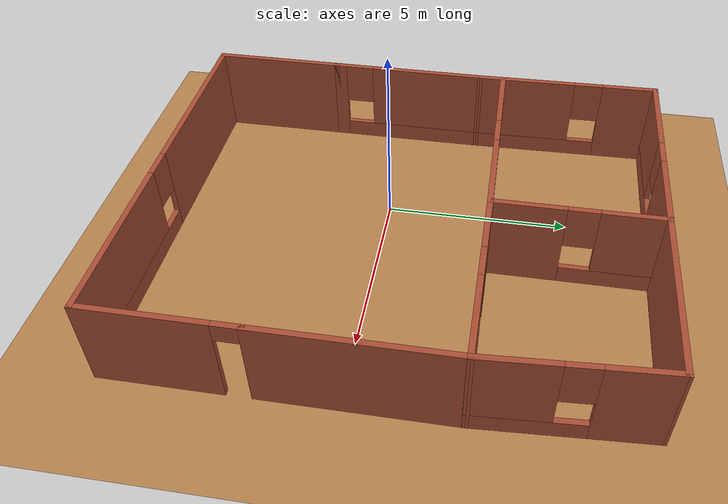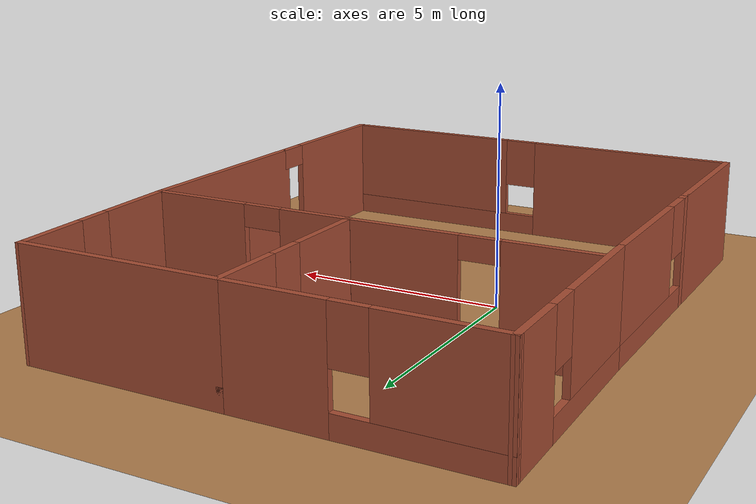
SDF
<sdf version="1.7">
 <world name="default">
  <light name="sun" type="directional">
   <pose>0 0 10 0 -0 0</pose>
   <diffuse>0.8 0.8 0.8 1</diffuse>
   <specular>0.2 0.2 0.2 1</specular>
   <attenuation>
    <range>1000</range>
    <constant>0.9</constant>
    <linear>0.01</linear>
    <quadratic>0.001</quadratic>
   </attenuation>
   <direction>-0.5 0.1 -0.9</direction>
   <spot><inner_angle>0</inner_angle><outer_angle>0</outer_angle><falloff>0</falloff></spot>
  </light>
  <model name="ground_plane">
   <static>1</static>
   <link name="link">
    <collision name="collision">
     <geometry><plane><normal>0 0 1</normal><size>100 100</size></plane></geometry>
     <surface>
      <contact><collide_bitmask>65535</collide_bitmask></contact>
      <friction><ode><mu>100</mu><mu2>50</mu2></ode></friction>
     </surface>
    </collision>
    <visual name="visual">
     <cast_shadows>0</cast_shadows>
     <geometry><plane><normal>0 0 1</normal><size>100 100</size></plane></geometry>
     <material>
      <script><uri>file://media/materials/scripts/gazebo.material</uri><name>Gazebo/Wood</name></script>
     </material>
    </visual>
   </link>
  </model>
  <gravity>0 0 -9.8</gravity>
  <magnetic_field>6e-06 2.3e-05 -4.2e-05</magnetic_field>
  <atmosphere type="adiabatic"/>
  <physics type="ode">
   <max_step_size>0.001</max_step_size>
   <real_time_factor>1</real_time_factor>
   <real_time_update_rate>1000</real_time_update_rate>
  </physics>
  <scene><ambient>0.4 0.4 0.4 1</ambient><background>0.7 0.7 0.7 1</background><shadows>1</shadows></scene>
  <spherical_coordinates>
   <surface_model>EARTH_WGS84</surface_model>
   <latitude_deg>0</latitude_deg>
   <longitude_deg>0</longitude_deg>
   <elevation>0</elevation>
   <heading_deg>0</heading_deg>
  </spherical_coordinates>
  <model name="Map4">
   <pose>1.65411 0.721478 0 0 -0 0</pose>
   <link name="Wall_0">
    <collision name="Wall_0_Collision">
     <geometry><box><size>3.75 0.15 2.5</size></box></geometry>
     <pose>0 0 1.25 0 -0 0</pose>
    </collision>
    <visual name="Wall_0_Visual">
     <pose>0 0 1.25 0 -0 0</pose>
     <geometry><box><size>3.75 0.15 2.5</size></box></geometry>
     <material>
      <script><uri>file://media/materials/scripts/gazebo.material</uri><name>Gazebo/Bricks</name></script>
      <ambient>1 1 1 1</ambient>
     </material>
     <meta><layer>0</layer></meta>
    </visual>
    <pose>-5.12636 -4.72709 0 0 -0 -1.5708</pose>
   </link>
   <link name="Wall_1">
    <pose>0.048638 -6.52709 0 0 -0 0</pose>
    <visual name="Wall_1_Visual_0">
     <pose>-2.71065 0 1.25 0 -0 0</pose>
     <geometry><box><size>5.07869 0.15 2.5</size></box></geometry>
     <material>
      <script><uri>file://media/materials/scripts/gazebo.material</uri><name>Gazebo/Bricks</name></script>
      <ambient>1 1 1 1</ambient>
     </material>
     <meta><layer>0</layer></meta>
    </visual>
    <collision name="Wall_1_Collision_0">
     <geometry><box><size>5.07869 0.15 2.5</size></box></geometry>
     <pose>-2.71065 0 1.25 0 -0 0</pose>
    </collision>
    <visual name="Wall_1_Visual_1">
     <pose>2.53935 0 0.25 0 -0 0</pose>
     <geometry><box><size>5.42131 0.15 0.5</size></box></geometry>
     <material>
      <script><uri>file://media/materials/scripts/gazebo.material</uri><name>Gazebo/Bricks</name></script>
      <ambient>1 1 1 1</ambient>
     </material>
     <meta><layer>0</layer></meta>
    </visual>
    <collision name="Wall_1_Collision_1">
     <geometry><box><size>5.42131 0.15 0.5</size></box></geometry>
     <pose>2.53935 0 0.25 0 -0 0</pose>
    </collision>
    <visual name="Wall_1_Visual_2">
     <pose>2.93935 0 1.5 0 -0 0</pose>
     <geometry><box><size>4.62131 0.15 2</size></box></geometry>
     <material>
      <script><uri>file://media/materials/scripts/gazebo.material</uri><name>Gazebo/Bricks</name></script>
      <ambient>1 1 1 1</ambient>
     </material>
     <meta><layer>0</layer></meta>
    </visual>
    <collision name="Wall_1_Collision_2">
     <geometry><box><size>4.62131 0.15 2</size></box></geometry>
     <pose>2.93935 0 1.5 0 -0 0</pose>
    </collision>
    <visual name="Wall_1_Visual_3">
     <pose>0.228691 0 1.9 0 -0 0</pose>
     <geometry><box><size>0.8 0.15 1.2</size></box></geometry>
     <material>
      <script><uri>file://media/materials/scripts/gazebo.material</uri><name>Gazebo/Bricks</name></script>
      <ambient>1 1 1 1</ambient>
     </material>
     <meta><layer>0</layer></meta>
    </visual>
    <collision name="Wall_1_Collision_3">
     <geometry><box><size>0.8 0.15 1.2</size></box></geometry>
     <pose>0.228691 0 1.9 0 -0 0</pose>
    </collision>
   </link>
   <link name="Wall_10">
    <pose>0.373638 4.34791 0 0 -0 1.5708</pose>
    <visual name="Wall_10_Visual_0">
     <pose>-1.26203 0 1.25 0 -0 0</pose>
     <geometry><box><size>1.97595 0.15 2.5</size></box></geometry>
     <material>
      <script><uri>file://media/materials/scripts/gazebo.material</uri><name>Gazebo/Bricks</name></script>
      <ambient>1 1 1 1</ambient>
     </material>
     <meta><layer>0</layer></meta>
    </visual>
    <collision name="Wall_10_Collision_0">
     <geometry><box><size>1.97595 0.15 2.5</size></box></geometry>
     <pose>-1.26203 0 1.25 0 -0 0</pose>
    </collision>
    <visual name="Wall_10_Visual_1">
     <pose>0.987973 0 0.25 0 -0 0</pose>
     <geometry><box><size>2.52405 0.15 0.5</size></box></geometry>
     <material>
      <script><uri>file://media/materials/scripts/gazebo.material</uri><name>Gazebo/Bricks</name></script>
      <ambient>1 1 1 1</ambient>
     </material>
     <meta><layer>0</layer></meta>
    </visual>
    <collision name="Wall_10_Collision_1">
     <geometry><box><size>2.52405 0.15 0.5</size></box></geometry>
     <pose>0.987973 0 0.25 0 -0 0</pose>
    </collision>
    <visual name="Wall_10_Visual_2">
     <pose>1.38797 0 1.5 0 -0 0</pose>
     <geometry><box><size>1.72405 0.15 2</size></box></geometry>
     <material>
      <script><uri>file://media/materials/scripts/gazebo.material</uri><name>Gazebo/Bricks</name></script>
      <ambient>1 1 1 1</ambient>
     </material>
     <meta><layer>0</layer></meta>
    </visual>
    <collision name="Wall_10_Collision_2">
     <geometry><box><size>1.72405 0.15 2</size></box></geometry>
     <pose>1.38797 0 1.5 0 -0 0</pose>
    </collision>
    <visual name="Wall_10_Visual_3">
     <pose>0.125947 0 1.9 0 -0 0</pose>
     <geometry><box><size>0.8 0.15 1.2</size></box></geometry>
     <material>
      <script><uri>file://media/materials/scripts/gazebo.material</uri><name>Gazebo/Bricks</name></script>
      <ambient>1 1 1 1</ambient>
     </material>
     <meta><layer>0</layer></meta>
    </visual>
    <collision name="Wall_10_Collision_3">
     <geometry><box><size>0.8 0.15 1.2</size></box></geometry>
     <pose>0.125947 0 1.9 0 -0 0</pose>
    </collision>
   </link>
   <link name="Wall_11">
    <pose>-2.42636 6.52291 0 0 -0 3.14159</pose>
    <visual name="Wall_11_Visual_0">
     <pose>-1.70994 0 1.25 0 -0 0</pose>
     <geometry><box><size>2.33012 0.15 2.5</size></box></geometry>
     <material>
      <script><uri>file://media/materials/scripts/gazebo.material</uri><name>Gazebo/Bricks</name></script>
      <ambient>1 1 1 1</ambient>
     </material>
     <meta><layer>0</layer></meta>
    </visual>
    <collision name="Wall_11_Collision_0">
     <geometry><box><size>2.33012 0.15 2.5</size></box></geometry>
     <pose>-1.70994 0 1.25 0 -0 0</pose>
    </collision>
    <visual name="Wall_11_Visual_1">
     <pose>1.16506 0 0.25 0 -0 0</pose>
     <geometry><box><size>3.41988 0.15 0.5</size></box></geometry>
     <material>
      <script><uri>file://media/materials/scripts/gazebo.material</uri><name>Gazebo/Bricks</name></script>
      <ambient>1 1 1 1</ambient>
     </material>
     <meta><layer>0</layer></meta>
    </visual>
    <collision name="Wall_11_Collision_1">
     <geometry><box><size>3.41988 0.15 0.5</size></box></geometry>
     <pose>1.16506 0 0.25 0 -0 0</pose>
    </collision>
    <visual name="Wall_11_Visual_2">
     <pose>1.56506 0 1.5 0 -0 0</pose>
     <geometry><box><size>2.61988 0.15 2</size></box></geometry>
     <material>
      <script><uri>file://media/materials/scripts/gazebo.material</uri><name>Gazebo/Bricks</name></script>
      <ambient>1 1 1 1</ambient>
     </material>
     <meta><layer>0</layer></meta>
    </visual>
    <collision name="Wall_11_Collision_2">
     <geometry><box><size>2.61988 0.15 2</size></box></geometry>
     <pose>1.56506 0 1.5 0 -0 0</pose>
    </collision>
    <visual name="Wall_11_Visual_3">
     <pose>-0.144876 0 1.9 0 -0 0</pose>
     <geometry><box><size>0.8 0.15 1.2</size></box></geometry>
     <material>
      <script><uri>file://media/materials/scripts/gazebo.material</uri><name>Gazebo/Bricks</name></script>
      <ambient>1 1 1 1</ambient>
     </material>
     <meta><layer>0</layer></meta>
    </visual>
    <collision name="Wall_11_Collision_3">
     <geometry><box><size>0.8 0.15 1.2</size></box></geometry>
     <pose>-0.144876 0 1.9 0 -0 0</pose>
    </collision>
   </link>
   <link name="Wall_12">
    <pose>-5.17636 3.97291 0 0 -0 -1.55119</pose>
    <visual name="Wall_12_Visual_0">
     <pose>-1.83319 0 1.25 0 -0 0</pose>
     <geometry><box><size>1.58459 0.15 2.5</size></box></geometry>
     <material>
      <script><uri>file://media/materials/scripts/gazebo.material</uri><name>Gazebo/Bricks</name></script>
      <ambient>1 1 1 1</ambient>
     </material>
     <meta><layer>0</layer></meta>
    </visual>
    <collision name="Wall_12_Collision_0">
     <geometry><box><size>1.58459 0.15 2.5</size></box></geometry>
     <pose>-1.83319 0 1.25 0 -0 0</pose>
    </collision>
    <visual name="Wall_12_Visual_1">
     <pose>0.792298 0 0.25 0 -0 0</pose>
     <geometry><box><size>3.66639 0.15 0.5</size></box></geometry>
     <material>
      <script><uri>file://media/materials/scripts/gazebo.material</uri><name>Gazebo/Bricks</name></script>
      <ambient>1 1 1 1</ambient>
     </material>
     <meta><layer>0</layer></meta>
    </visual>
    <collision name="Wall_12_Collision_1">
     <geometry><box><size>3.66639 0.15 0.5</size></box></geometry>
     <pose>0.792298 0 0.25 0 -0 0</pose>
    </collision>
    <visual name="Wall_12_Visual_2">
     <pose>1.1923 0 1.5 0 -0 0</pose>
     <geometry><box><size>2.86639 0.15 2</size></box></geometry>
     <material>
      <script><uri>file://media/materials/scripts/gazebo.material</uri><name>Gazebo/Bricks</name></script>
      <ambient>1 1 1 1</ambient>
     </material>
     <meta><layer>0</layer></meta>
    </visual>
    <collision name="Wall_12_Collision_2">
     <geometry><box><size>2.86639 0.15 2</size></box></geometry>
     <pose>1.1923 0 1.5 0 -0 0</pose>
    </collision>
    <visual name="Wall_12_Visual_3">
     <pose>-0.640895 0 1.9 0 -0 0</pose>
     <geometry><box><size>0.8 0.15 1.2</size></box></geometry>
     <material>
      <script><uri>file://media/materials/scripts/gazebo.material</uri><name>Gazebo/Bricks</name></script>
      <ambient>1 1 1 1</ambient>
     </material>
     <meta><layer>0</layer></meta>
    </visual>
    <collision name="Wall_12_Collision_3">
     <geometry><box><size>0.8 0.15 1.2</size></box></geometry>
     <pose>-0.640895 0 1.9 0 -0 0</pose>
    </collision>
   </link>
   <link name="Wall_14">
    <collision name="Wall_14_Collision">
     <geometry><box><size>4.75 0.15 2.5</size></box></geometry>
     <pose>0 0 1.25 0 -0 0</pose>
    </collision>
    <visual name="Wall_14_Visual">
     <pose>0 0 1.25 0 -0 0</pose>
     <geometry><box><size>4.75 0.15 2.5</size></box></geometry>
     <material>
      <script><uri>file://media/materials/scripts/gazebo.material</uri><name>Gazebo/Bricks</name></script>
      <ambient>1 1 1 1</ambient>
     </material>
     <meta><layer>0</layer></meta>
    </visual>
    <pose>2.67364 6.52291 0 0 -0 0</pose>
   </link>
   <link name="Wall_15">
    <pose>5.09864 4.34791 0 0 -0 -1.51339</pose>
    <visual name="Wall_15_Visual_0">
     <pose>-1.38189 0 1.25 0 -0 0</pose>
     <geometry><box><size>1.74339 0.15 2.5</size></box></geometry>
     <material>
      <script><uri>file://media/materials/scripts/gazebo.material</uri><name>Gazebo/Bricks</name></script>
      <ambient>1 1 1 1</ambient>
     </material>
     <meta><layer>0</layer></meta>
    </visual>
    <collision name="Wall_15_Collision_0">
     <geometry><box><size>1.74339 0.15 2.5</size></box></geometry>
     <pose>-1.38189 0 1.25 0 -0 0</pose>
    </collision>
    <visual name="Wall_15_Visual_1">
     <pose>0.871697 0 0.25 0 -0 0</pose>
     <geometry><box><size>2.76378 0.15 0.5</size></box></geometry>
     <material>
      <script><uri>file://media/materials/scripts/gazebo.material</uri><name>Gazebo/Bricks</name></script>
      <ambient>1 1 1 1</ambient>
     </material>
     <meta><layer>0</layer></meta>
    </visual>
    <collision name="Wall_15_Collision_1">
     <geometry><box><size>2.76378 0.15 0.5</size></box></geometry>
     <pose>0.871697 0 0.25 0 -0 0</pose>
    </collision>
    <visual name="Wall_15_Visual_2">
     <pose>1.2717 0 1.5 0 -0 0</pose>
     <geometry><box><size>1.96378 0.15 2</size></box></geometry>
     <material>
      <script><uri>file://media/materials/scripts/gazebo.material</uri><name>Gazebo/Bricks</name></script>
      <ambient>1 1 1 1</ambient>
     </material>
     <meta><layer>0</layer></meta>
    </visual>
    <collision name="Wall_15_Collision_2">
     <geometry><box><size>1.96378 0.15 2</size></box></geometry>
     <pose>1.2717 0 1.5 0 -0 0</pose>
    </collision>
    <visual name="Wall_15_Visual_3">
     <pose>-0.110195 0 1.9 0 -0 0</pose>
     <geometry><box><size>0.8 0.15 1.2</size></box></geometry>
     <material>
      <script><uri>file://media/materials/scripts/gazebo.material</uri><name>Gazebo/Bricks</name></script>
      <ambient>1 1 1 1</ambient>
     </material>
     <meta><layer>0</layer></meta>
    </visual>
    <collision name="Wall_15_Collision_3">
     <geometry><box><size>0.8 0.15 1.2</size></box></geometry>
     <pose>-0.110195 0 1.9 0 -0 0</pose>
    </collision>
   </link>
   <link name="Wall_17">
    <pose>-2.36144 2.13889 0 0 -0 0.012438</pose>
    <visual name="Wall_17_Visual_0">
     <pose>-1.73256 0 1.25 0 -0 0</pose>
     <geometry><box><size>2.15546 0.15 2.5</size></box></geometry>
     <material>
      <script><uri>file://media/materials/scripts/gazebo.material</uri><name>Gazebo/Bricks</name></script>
      <ambient>1 1 1 1</ambient>
     </material>
     <meta><layer>0</layer></meta>
    </visual>
    <collision name="Wall_17_Collision_0">
     <geometry><box><size>2.15546 0.15 2.5</size></box></geometry>
     <pose>-1.73256 0 1.25 0 -0 0</pose>
    </collision>
    <visual name="Wall_17_Visual_1">
     <pose>1.52773 0 1.25 0 -0 0</pose>
     <geometry><box><size>2.56512 0.15 2.5</size></box></geometry>
     <material>
      <script><uri>file://media/materials/scripts/gazebo.material</uri><name>Gazebo/Bricks</name></script>
      <ambient>1 1 1 1</ambient>
     </material>
     <meta><layer>0</layer></meta>
    </visual>
    <collision name="Wall_17_Collision_1">
     <geometry><box><size>2.56512 0.15 2.5</size></box></geometry>
     <pose>1.52773 0 1.25 0 -0 0</pose>
    </collision>
    <visual name="Wall_17_Visual_2">
     <pose>-0.204831 0 2.25 0 -0 0</pose>
     <geometry><box><size>0.9 0.15 0.5</size></box></geometry>
     <material>
      <script><uri>file://media/materials/scripts/gazebo.material</uri><name>Gazebo/Bricks</name></script>
      <ambient>1 1 1 1</ambient>
     </material>
     <meta><layer>0</layer></meta>
    </visual>
    <collision name="Wall_17_Collision_2">
     <geometry><box><size>0.9 0.15 0.5</size></box></geometry>
     <pose>-0.204831 0 2.25 0 -0 0</pose>
    </collision>
   </link>
   <link name="Wall_2">
    <pose>5.22364 -4.60209 0 0 -0 1.5708</pose>
    <visual name="Wall_2_Visual_0">
     <pose>-0.385678 0 1.25 0 -0 0</pose>
     <geometry><box><size>3.22865 0.15 2.5</size></box></geometry>
     <material>
      <script><uri>file://media/materials/scripts/gazebo.material</uri><name>Gazebo/Bricks</name></script>
      <ambient>1 1 1 1</ambient>
     </material>
     <meta><layer>0</layer></meta>
    </visual>
    <collision name="Wall_2_Collision_0">
     <geometry><box><size>3.22865 0.15 2.5</size></box></geometry>
     <pose>-0.385678 0 1.25 0 -0 0</pose>
    </collision>
    <visual name="Wall_2_Visual_1">
     <pose>1.61432 0 2.25 0 -0 0</pose>
     <geometry><box><size>0.771355 0.15 0.5</size></box></geometry>
     <material>
      <script><uri>file://media/materials/scripts/gazebo.material</uri><name>Gazebo/Bricks</name></script>
      <ambient>1 1 1 1</ambient>
     </material>
     <meta><layer>0</layer></meta>
    </visual>
    <collision name="Wall_2_Collision_1">
     <geometry><box><size>0.771355 0.15 0.5</size></box></geometry>
     <pose>1.61432 0 2.25 0 -0 0</pose>
    </collision>
   </link>
   <link name="Wall_4">
    <pose>-5.12636 -0.75209 0 0 -0 1.5708</pose>
    <visual name="Wall_4_Visual_0">
     <pose>-2.06175 0 1.25 0 -0 0</pose>
     <geometry><box><size>0.376503 0.15 2.5</size></box></geometry>
     <material>
      <script><uri>file://media/materials/scripts/gazebo.material</uri><name>Gazebo/Bricks</name></script>
      <ambient>1 1 1 1</ambient>
     </material>
     <meta><layer>0</layer></meta>
    </visual>
    <collision name="Wall_4_Collision_0">
     <geometry><box><size>0.376503 0.15 2.5</size></box></geometry>
     <pose>-2.06175 0 1.25 0 -0 0</pose>
    </collision>
    <visual name="Wall_4_Visual_1">
     <pose>0.188252 0 0.25 0 -0 0</pose>
     <geometry><box><size>4.1235 0.15 0.5</size></box></geometry>
     <material>
      <script><uri>file://media/materials/scripts/gazebo.material</uri><name>Gazebo/Bricks</name></script>
      <ambient>1 1 1 1</ambient>
     </material>
     <meta><layer>0</layer></meta>
    </visual>
    <collision name="Wall_4_Collision_1">
     <geometry><box><size>4.1235 0.15 0.5</size></box></geometry>
     <pose>0.188252 0 0.25 0 -0 0</pose>
    </collision>
    <visual name="Wall_4_Visual_2">
     <pose>0.588252 0 1.5 0 -0 0</pose>
     <geometry><box><size>3.3235 0.15 2</size></box></geometry>
     <material>
      <script><uri>file://media/materials/scripts/gazebo.material</uri><name>Gazebo/Bricks</name></script>
      <ambient>1 1 1 1</ambient>
     </material>
     <meta><layer>0</layer></meta>
    </visual>
    <collision name="Wall_4_Collision_2">
     <geometry><box><size>3.3235 0.15 2</size></box></geometry>
     <pose>0.588252 0 1.5 0 -0 0</pose>
    </collision>
    <visual name="Wall_4_Visual_3">
     <pose>-1.4735 0 1.9 0 -0 0</pose>
     <geometry><box><size>0.8 0.15 1.2</size></box></geometry>
     <material>
      <script><uri>file://media/materials/scripts/gazebo.material</uri><name>Gazebo/Bricks</name></script>
      <ambient>1 1 1 1</ambient>
     </material>
     <meta><layer>0</layer></meta>
    </visual>
    <collision name="Wall_4_Collision_3">
     <geometry><box><size>0.8 0.15 1.2</size></box></geometry>
     <pose>-1.4735 0 1.9 0 -0 0</pose>
    </collision>
   </link>
   <link name="Wall_8">
    <collision name="Wall_8_Collision">
     <geometry><box><size>5 0.15 2.5</size></box></geometry>
     <pose>0 0 1.25 0 -0 0</pose>
    </collision>
    <visual name="Wall_8_Visual">
     <pose>0 0 1.25 0 -0 0</pose>
     <geometry><box><size>5 0.15 2.5</size></box></geometry>
     <material>
      <script><uri>file://media/materials/scripts/gazebo.material</uri><name>Gazebo/Bricks</name></script>
      <ambient>1 1 1 1</ambient>
     </material>
     <meta><layer>0</layer></meta>
    </visual>
    <pose>5.22364 -0.25209 0 0 -0 1.5708</pose>
   </link>
   <link name="Wall_9">
    <pose>2.79864 2.17291 0 0 -0 3.14159</pose>
    <visual name="Wall_9_Visual_0">
     <pose>-1.31002 0 1.25 0 -0 0</pose>
     <geometry><box><size>2.37996 0.15 2.5</size></box></geometry>
     <material>
      <script><uri>file://media/materials/scripts/gazebo.material</uri><name>Gazebo/Bricks</name></script>
      <ambient>1 1 1 1</ambient>
     </material>
     <meta><layer>0</layer></meta>
    </visual>
    <collision name="Wall_9_Collision_0">
     <geometry><box><size>2.37996 0.15 2.5</size></box></geometry>
     <pose>-1.31002 0 1.25 0 -0 0</pose>
    </collision>
    <visual name="Wall_9_Visual_1">
     <pose>1.63998 0 1.25 0 -0 0</pose>
     <geometry><box><size>1.72004 0.15 2.5</size></box></geometry>
     <material>
      <script><uri>file://media/materials/scripts/gazebo.material</uri><name>Gazebo/Bricks</name></script>
      <ambient>1 1 1 1</ambient>
     </material>
     <meta><layer>0</layer></meta>
    </visual>
    <collision name="Wall_9_Collision_1">
     <geometry><box><size>1.72004 0.15 2.5</size></box></geometry>
     <pose>1.63998 0 1.25 0 -0 0</pose>
    </collision>
    <visual name="Wall_9_Visual_2">
     <pose>0.329958 0 2.25 0 -0 0</pose>
     <geometry><box><size>0.9 0.15 0.5</size></box></geometry>
     <material>
      <script><uri>file://media/materials/scripts/gazebo.material</uri><name>Gazebo/Bricks</name></script>
      <ambient>1 1 1 1</ambient>
     </material>
     <meta><layer>0</layer></meta>
    </visual>
    <collision name="Wall_9_Collision_2">
     <geometry><box><size>0.9 0.15 0.5</size></box></geometry>
     <pose>0.329958 0 2.25 0 -0 0</pose>
    </collision>
   </link>
   <static>1</static>
  </model>
 </world>
</sdf>
